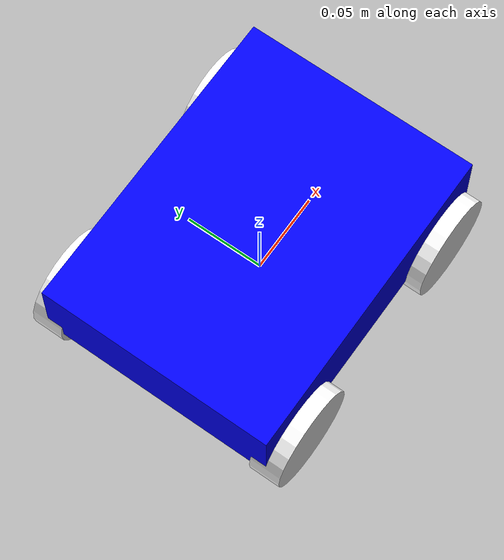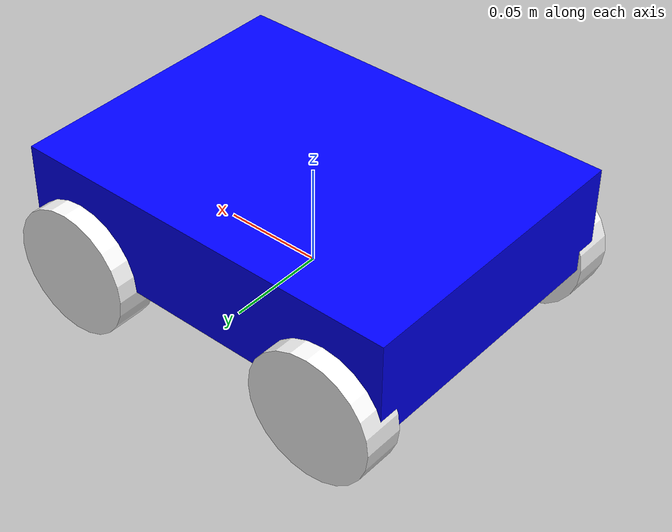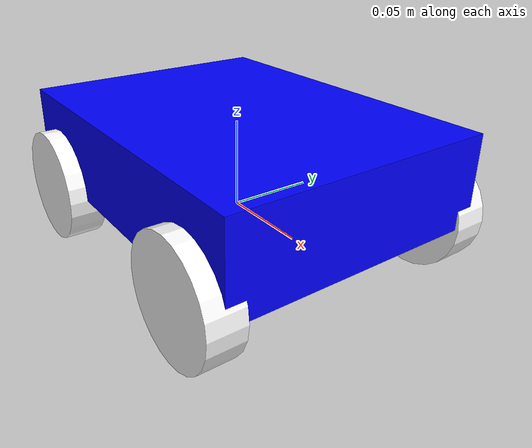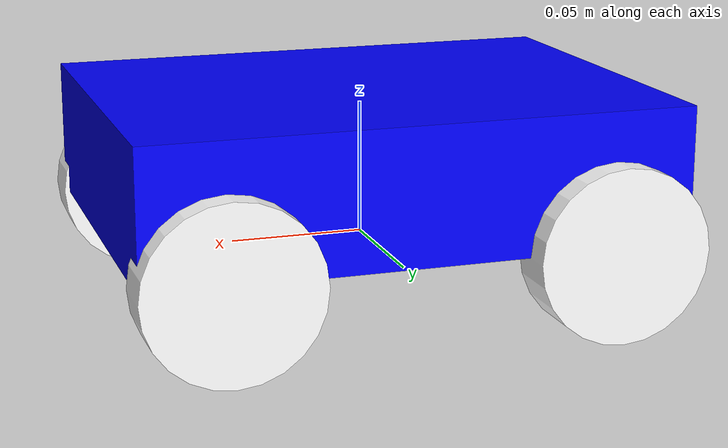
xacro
<?xml version="1.0"?>
<robot xmlns:xacro="http://www.ros.org/wiki/xacro" name="simple_diff_robot">

  <!-- ==================== 参数定义 ==================== -->
  <xacro:property name="base_length" value="0.20"/>
  <xacro:property name="base_width" value="0.15"/>
  <xacro:property name="base_height" value="0.05"/>
  <xacro:property name="base_mass" value="1.0"/>

  <xacro:property name="wheel_radius" value="0.032"/>
  <xacro:property name="wheel_width" value="0.02"/>
  <xacro:property name="wheel_mass" value="0.05"/>

  <!-- 轮子位置（相对于base_link中心） -->
  <xacro:property name="wheel_x_offset" value="0.07"/>
  <xacro:property name="wheel_y_offset" value="0.075"/>
  <xacro:property name="wheel_z_offset" value="-0.025"/>

  <!-- ==================== 惯性矩宏 ==================== -->
  <!-- 长方体惯性矩 -->
  <xacro:macro name="box_inertia" params="m l w h">
    <inertial>
      <mass value="${m}"/>
      <origin xyz="0 0 0" rpy="0 0 0"/>
      <inertia
        ixx="${m * (h*h + w*w) / 12.0}"
        ixy="0" ixz="0"
        iyy="${m * (l*l + h*h) / 12.0}"
        iyz="0"
        izz="${m * (l*l + w*w) / 12.0}"/>
    </inertial>
  </xacro:macro>

  <!-- 圆柱体惯性矩（轴向沿Y轴） -->
  <xacro:macro name="cylinder_inertia_y" params="m r h">
    <inertial>
      <mass value="${m}"/>
      <origin xyz="0 0 0" rpy="0 0 0"/>
      <inertia
        ixx="${m * (3*r*r + h*h) / 12.0}"
        ixy="0" ixz="0"
        iyy="${m * r*r / 2.0}"
        iyz="0"
        izz="${m * (3*r*r + h*h) / 12.0}"/>
    </inertial>
  </xacro:macro>

  <!-- ==================== Link定义 ==================== -->

  <!-- 虚拟根节点 -->
  <link name="base_footprint"/>

  <!-- 机器人基座 -->
  <link name="base_link">
    <xacro:box_inertia m="${base_mass}" l="${base_length}" w="${base_width}" h="${base_height}"/>

    <visual>
      <origin xyz="0 0 0" rpy="0 0 0"/>
      <geometry>
        <box size="${base_length} ${base_width} ${base_height}"/>
      </geometry>
      <material name="blue">
        <color rgba="0 0 1 1"/>
      </material>
    </visual>

    <collision>
      <origin xyz="0 0 0" rpy="0 0 0"/>
      <geometry>
        <box size="${base_length} ${base_width} ${base_height}"/>
      </geometry>
    </collision>
  </link>

  <!-- 左前轮 -->
  <link name="lf_wheel_link">
    <xacro:cylinder_inertia_y m="${wheel_mass}" r="${wheel_radius}" h="${wheel_width}"/>

    <visual>
      <origin xyz="0 0 0" rpy="${pi/2} 0 0"/>
      <geometry>
        <cylinder radius="${wheel_radius}" length="${wheel_width}"/>
      </geometry>
      <material name="white">
        <color rgba="1 1 1 1"/>
      </material>
    </visual>

    <collision>
      <origin xyz="0 0 0" rpy="${pi/2} 0 0"/>
      <geometry>
        <cylinder radius="${wheel_radius}" length="${wheel_width}"/>
      </geometry>
    </collision>
  </link>

  <!-- 左后轮 -->
  <link name="lb_wheel_link">
    <xacro:cylinder_inertia_y m="${wheel_mass}" r="${wheel_radius}" h="${wheel_width}"/>

    <visual>
      <origin xyz="0 0 0" rpy="${pi/2} 0 0"/>
      <geometry>
        <cylinder radius="${wheel_radius}" length="${wheel_width}"/>
      </geometry>
      <material name="white"/>
    </visual>

    <collision>
      <origin xyz="0 0 0" rpy="${pi/2} 0 0"/>
      <geometry>
        <cylinder radius="${wheel_radius}" length="${wheel_width}"/>
      </geometry>
    </collision>
  </link>

  <!-- 右前轮 -->
  <link name="rf_wheel_link">
    <xacro:cylinder_inertia_y m="${wheel_mass}" r="${wheel_radius}" h="${wheel_width}"/>

    <visual>
      <origin xyz="0 0 0" rpy="${pi/2} 0 0"/>
      <geometry>
        <cylinder radius="${wheel_radius}" length="${wheel_width}"/>
      </geometry>
      <material name="white"/>
    </visual>

    <collision>
      <origin xyz="0 0 0" rpy="${pi/2} 0 0"/>
      <geometry>
        <cylinder radius="${wheel_radius}" length="${wheel_width}"/>
      </geometry>
    </collision>
  </link>

  <!-- 右后轮 -->
  <link name="rb_wheel_link">
    <xacro:cylinder_inertia_y m="${wheel_mass}" r="${wheel_radius}" h="${wheel_width}"/>

    <visual>
      <origin xyz="0 0 0" rpy="${pi/2} 0 0"/>
      <geometry>
        <cylinder radius="${wheel_radius}" length="${wheel_width}"/>
      </geometry>
      <material name="white"/>
    </visual>

    <collision>
      <origin xyz="0 0 0" rpy="${pi/2} 0 0"/>
      <geometry>
        <cylinder radius="${wheel_radius}" length="${wheel_width}"/>
      </geometry>
    </collision>
  </link>

  <!-- ==================== Joint定义 ==================== -->

  <!-- base_footprint -> base_link -->
  <joint name="base_joint" type="fixed">
    <origin xyz="0 0 ${wheel_radius}" rpy="0 0 0"/>
    <parent link="base_footprint"/>
    <child link="base_link"/>
  </joint>

  <!-- 左前轮关节 -->
  <joint name="lf_wheel_joint" type="continuous">
    <origin xyz="${wheel_x_offset} ${wheel_y_offset} ${wheel_z_offset}" rpy="0 0 0"/>
    <parent link="base_link"/>
    <child link="lf_wheel_link"/>
    <axis xyz="0 1 0"/>
  </joint>

  <!-- 左后轮关节 -->
  <joint name="lb_wheel_joint" type="continuous">
    <origin xyz="-${wheel_x_offset} ${wheel_y_offset} ${wheel_z_offset}" rpy="0 0 0"/>
    <parent link="base_link"/>
    <child link="lb_wheel_link"/>
    <axis xyz="0 1 0"/>
  </joint>

  <!-- 右前轮关节 -->
  <joint name="rf_wheel_joint" type="continuous">
    <origin xyz="${wheel_x_offset} -${wheel_y_offset} ${wheel_z_offset}" rpy="0 0 0"/>
    <parent link="base_link"/>
    <child link="rf_wheel_link"/>
    <axis xyz="0 1 0"/>
  </joint>

  <!-- 右后轮关节 -->
  <joint name="rb_wheel_joint" type="continuous">
    <origin xyz="-${wheel_x_offset} -${wheel_y_offset} ${wheel_z_offset}" rpy="0 0 0"/>
    <parent link="base_link"/>
    <child link="rb_wheel_link"/>
    <axis xyz="0 1 0"/>
  </joint>

  <!-- ==================== 包含其他配置 ==================== -->
  <xacro:include filename="$(find simple_diff_test)/urdf/simple_diff_robot.gazebo.xacro"/>
  <xacro:include filename="$(find simple_diff_test)/urdf/simple_diff_robot.ros2_control.xacro"/>

</robot>
